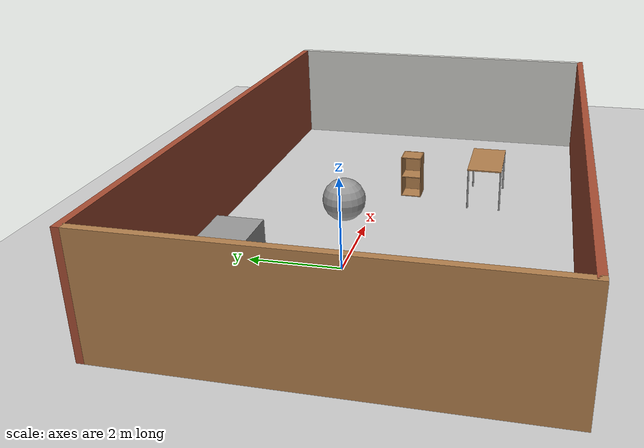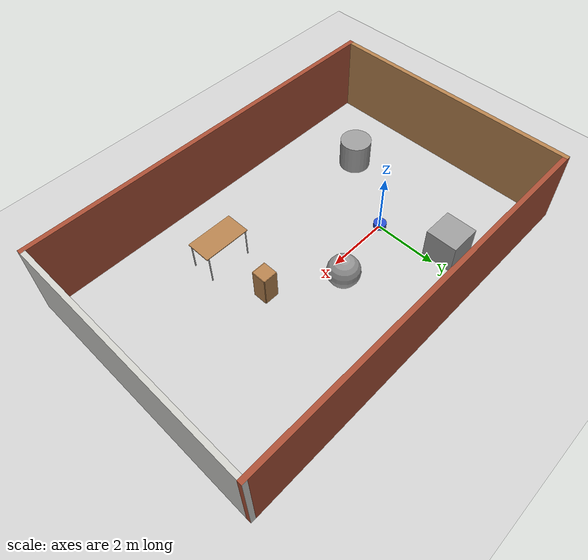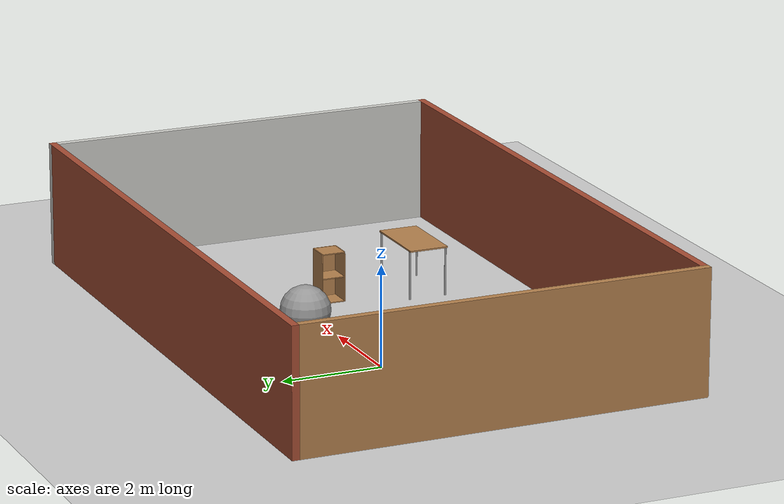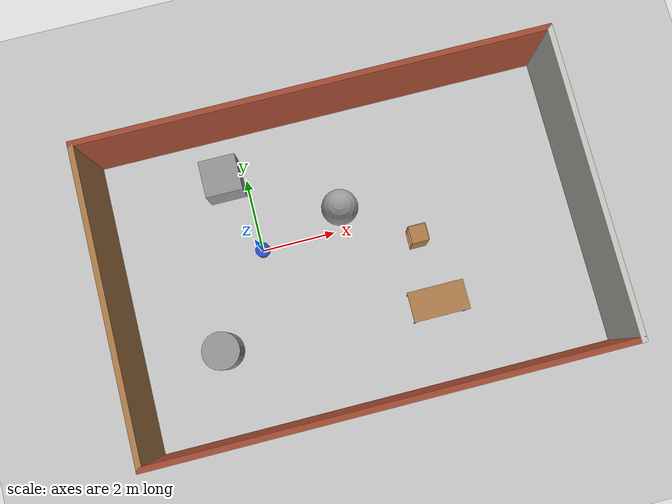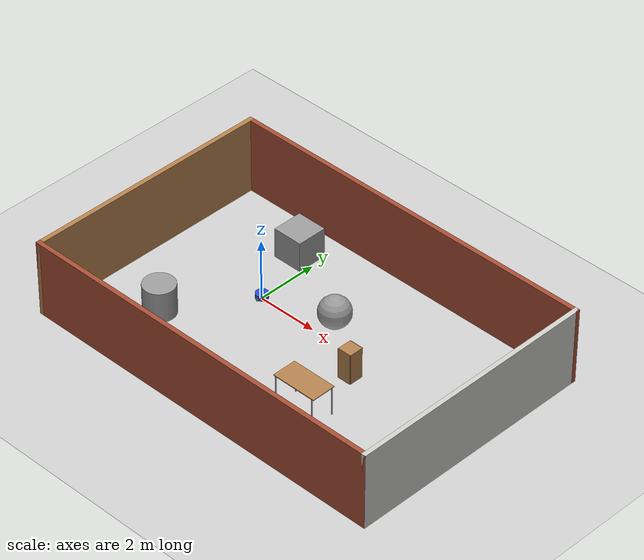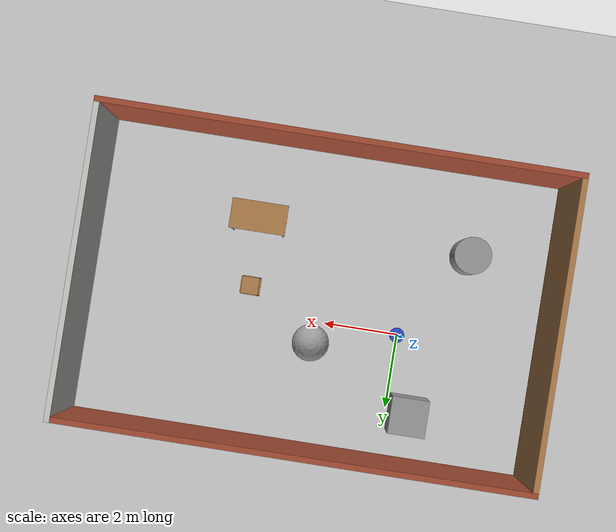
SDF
<sdf version="1.6">
 <world name="default">
  <light name="sun" type="directional">
   <pose>0 0 10 0 -0 0</pose>
   <diffuse>0.8 0.8 0.8 1</diffuse>
   <specular>0.2 0.2 0.2 1</specular>
   <attenuation>
    <range>1000</range>
    <constant>0.9</constant>
    <linear>0.01</linear>
    <quadratic>0.001</quadratic>
   </attenuation>
   <direction>-0.5 0.1 -0.9</direction>
  </light>
  <model name="ground_plane">
   <static>1</static>
   <link name="link">
    <collision name="collision">
     <geometry><plane><normal>0 0 1</normal><size>100 100</size></plane></geometry>
     <surface><friction><ode><mu>100</mu><mu2>50</mu2></ode></friction></surface>
    </collision>
    <visual name="visual">
     <cast_shadows>0</cast_shadows>
     <geometry><plane><normal>0 0 1</normal><size>100 100</size></plane></geometry>
     <material>
      <script><uri>file://media/materials/scripts/gazebo.material</uri><name>Gazebo/Grey</name></script>
     </material>
    </visual>
   </link>
  </model>
  <gravity>0 0 -9.8</gravity>
  <magnetic_field>6e-06 2.3e-05 -4.2e-05</magnetic_field>
  <atmosphere type="adiabatic"/>
  <physics name="default_physics" default="0" type="ode">
   <max_step_size>0.001</max_step_size>
   <real_time_factor>1</real_time_factor>
   <real_time_update_rate>1000</real_time_update_rate>
  </physics>
  <scene><ambient>0.4 0.4 0.4 1</ambient><background>0.7 0.7 0.7 1</background><shadows>1</shadows></scene>
  <audio><device>default</device></audio>
  <spherical_coordinates>
   <surface_model>EARTH_WGS84</surface_model>
   <latitude_deg>0</latitude_deg>
   <longitude_deg>0</longitude_deg>
   <elevation>0</elevation>
   <heading_deg>0</heading_deg>
  </spherical_coordinates>
  <model name="mrobot">
   <link name="base_footprint">
    <inertial>
     <pose>0 0 0.11 0 -0 0</pose>
     <mass>1</mass>
     <inertia><ixx>0.0121333</ixx><ixy>0</ixy><ixz>0</ixz><iyy>0.0121333</iyy><iyz>0</iyz><izz>0.02</izz></inertia>
    </inertial>
    <collision name="base_footprint_fixed_joint_lump__base_link_collision">
     <pose>0 0 0.11 0 -0 0</pose>
     <geometry><cylinder><length>0.16</length><radius>0.2</radius></cylinder></geometry>
    </collision>
    <visual name="base_footprint_visual">
     <geometry><box><size>0.001 0.001 0.001</size></box></geometry>
     <material><script><uri>__default__</uri><name>__default__</name></script></material>
    </visual>
    <visual name="base_footprint_fixed_joint_lump__base_link_visual_1">
     <pose>0 0 0.11 0 -0 0</pose>
     <geometry><cylinder><length>0.16</length><radius>0.2</radius></cylinder></geometry>
     <material>
      <script><name>Gazebo/Blue</name><uri>file://media/materials/scripts/gazebo.material</uri></script>
     </material>
    </visual>
   </link>
   <link name="back_caster_link">
    <pose>0.18 0 0.015 0 -0 0</pose>
    <inertial>
     <mass>0.2</mass>
     <inertia><ixx>1.8e-05</ixx><ixy>0</ixy><ixz>0</ixz><iyy>1.8e-05</iyy><iyz>0</iyz><izz>1.8e-05</izz></inertia>
    </inertial>
    <collision name="back_caster_link_collision">
     <geometry><sphere><radius>0.015</radius></sphere></geometry>
    </collision>
    <visual name="back_caster_link_visual">
     <geometry><sphere><radius>0.015</radius></sphere></geometry>
     <material>
      <script><name>Gazebo/Black</name><uri>file://media/materials/scripts/gazebo.material</uri></script>
     </material>
    </visual>
   </link>
   <joint name="back_caster_joint" type="revolute">
    <child>back_caster_link</child>
    <parent>base_footprint</parent>
    <axis>
     <xyz>0 1 0</xyz>
     <limit><lower>-1e+16</lower><upper>1e+16</upper></limit>
     <dynamics><spring_reference>0</spring_reference><spring_stiffness>0</spring_stiffness></dynamics>
     <use_parent_model_frame>1</use_parent_model_frame>
    </axis>
   </joint>
   <link name="front_caster_link">
    <pose>-0.18 0 0.015 0 -0 0</pose>
    <inertial>
     <mass>0.2</mass>
     <inertia><ixx>1.8e-05</ixx><ixy>0</ixy><ixz>0</ixz><iyy>1.8e-05</iyy><iyz>0</iyz><izz>1.8e-05</izz></inertia>
    </inertial>
    <collision name="front_caster_link_collision">
     <geometry><sphere><radius>0.015</radius></sphere></geometry>
    </collision>
    <visual name="front_caster_link_visual">
     <geometry><sphere><radius>0.015</radius></sphere></geometry>
     <material>
      <script><name>Gazebo/Black</name><uri>file://media/materials/scripts/gazebo.material</uri></script>
     </material>
    </visual>
   </link>
   <joint name="front_caster_joint" type="revolute">
    <child>front_caster_link</child>
    <parent>base_footprint</parent>
    <axis>
     <xyz>0 1 0</xyz>
     <limit><lower>-1e+16</lower><upper>1e+16</upper></limit>
     <dynamics><spring_reference>0</spring_reference><spring_stiffness>0</spring_stiffness></dynamics>
     <use_parent_model_frame>1</use_parent_model_frame>
    </axis>
   </joint>
   <link name="left_wheel_link">
    <pose>0 0.19 0.06 0 -0 0</pose>
    <inertial>
     <mass>0.2</mass>
     <inertia>
      <ixx>0.000190417</ixx>
      <ixy>0</ixy>
      <ixz>0</ixz>
      <iyy>0.000190417</iyy>
      <iyz>0</iyz>
      <izz>0.00036</izz>
     </inertia>
    </inertial>
    <collision name="left_wheel_link_collision">
     <pose>0 0 0 1.5708 -0 0</pose>
     <geometry><cylinder><length>0.025</length><radius>0.06</radius></cylinder></geometry>
    </collision>
    <visual name="left_wheel_link_visual">
     <pose>0 0 0 1.5708 -0 0</pose>
     <geometry><cylinder><length>0.025</length><radius>0.06</radius></cylinder></geometry>
     <material>
      <script><name>Gazebo/Gray</name><uri>file://media/materials/scripts/gazebo.material</uri></script>
     </material>
    </visual>
   </link>
   <joint name="left_wheel_joint" type="revolute">
    <child>left_wheel_link</child>
    <parent>base_footprint</parent>
    <axis>
     <xyz>0 1 0</xyz>
     <limit><lower>-1e+16</lower><upper>1e+16</upper></limit>
     <dynamics><spring_reference>0</spring_reference><spring_stiffness>0</spring_stiffness></dynamics>
     <use_parent_model_frame>1</use_parent_model_frame>
    </axis>
   </joint>
   <link name="right_wheel_link">
    <pose>0 -0.19 0.06 0 -0 0</pose>
    <inertial>
     <mass>0.2</mass>
     <inertia>
      <ixx>0.000190417</ixx>
      <ixy>0</ixy>
      <ixz>0</ixz>
      <iyy>0.000190417</iyy>
      <iyz>0</iyz>
      <izz>0.00036</izz>
     </inertia>
    </inertial>
    <collision name="right_wheel_link_collision">
     <pose>0 0 0 1.5708 -0 0</pose>
     <geometry><cylinder><length>0.025</length><radius>0.06</radius></cylinder></geometry>
    </collision>
    <visual name="right_wheel_link_visual">
     <pose>0 0 0 1.5708 -0 0</pose>
     <geometry><cylinder><length>0.025</length><radius>0.06</radius></cylinder></geometry>
     <material>
      <script><name>Gazebo/Gray</name><uri>file://media/materials/scripts/gazebo.material</uri></script>
     </material>
    </visual>
   </link>
   <joint name="right_wheel_joint" type="revolute">
    <child>right_wheel_link</child>
    <parent>base_footprint</parent>
    <axis>
     <xyz>0 1 0</xyz>
     <limit><lower>-1e+16</lower><upper>1e+16</upper></limit>
     <dynamics><spring_reference>0</spring_reference><spring_stiffness>0</spring_stiffness></dynamics>
     <use_parent_model_frame>1</use_parent_model_frame>
    </axis>
   </joint>
   <static>0</static>
   <plugin name="differential_drive_controller" filename="libgazebo_ros_diff_drive.so">
    <rosDebugLevel>Debug</rosDebugLevel>
    <publishWheelTF>1</publishWheelTF>
    <robotNamespace>/</robotNamespace>
    <publishTf>1</publishTf>
    <publishWheelJointState>1</publishWheelJointState>
    <alwaysOn>1</alwaysOn>
    <updateRate>100.0</updateRate>
    <legacyMode>1</legacyMode>
    <leftJoint>left_wheel_joint</leftJoint>
    <rightJoint>right_wheel_joint</rightJoint>
    <wheelSeparation>0.38</wheelSeparation>
    <wheelDiameter>0.12</wheelDiameter>
    <broadcastTF>1</broadcastTF>
    <wheelTorque>30</wheelTorque>
    <wheelAcceleration>1.8</wheelAcceleration>
    <commandTopic>cmd_vel</commandTopic>
    <odometryFrame>odom</odometryFrame>
    <odometryTopic>odom</odometryTopic>
    <robotBaseFrame>base_footprint</robotBaseFrame>
   </plugin>
   <pose>-0.002955 0.005128 -7e-06 3.5e-05 0 -0.013285</pose>
  </model>
  <model name="indoor_environment2">
   <pose>2.3301 -0.67241 0 0 -0 0</pose>
   <link name="Wall_2">
    <collision name="Wall_2_Collision">
     <geometry><box><size>12.5 0.15 2.5</size></box></geometry>
     <pose>0 0 1.25 0 -0 0</pose>
    </collision>
    <visual name="Wall_2_Visual">
     <pose>0 0 1.25 0 -0 0</pose>
     <geometry><box><size>12.5 0.15 2.5</size></box></geometry>
     <material>
      <script><uri>file://media/materials/scripts/gazebo.material</uri><name>Gazebo/Bricks</name></script>
      <ambient>1 1 1 1</ambient>
     </material>
     <meta><layer>0</layer></meta>
    </visual>
    <pose>-0 -4.05 0 0 -0 0</pose>
   </link>
   <link name="Wall_6">
    <collision name="Wall_6_Collision">
     <geometry><box><size>8.25 0.15 2.5</size></box></geometry>
     <pose>0 0 1.25 0 -0 0</pose>
    </collision>
    <visual name="Wall_6_Visual">
     <pose>0 0 1.25 0 -0 0</pose>
     <geometry><box><size>8.25 0.15 2.5</size></box></geometry>
     <material>
      <script><uri>file://media/materials/scripts/gazebo.material</uri><name>Gazebo/CeilingTiled</name></script>
      <ambient>1 1 1 1</ambient>
     </material>
     <meta><layer>0</layer></meta>
    </visual>
    <pose>6.175 0 0 0 -0 1.5708</pose>
   </link>
   <link name="Wall_7">
    <collision name="Wall_7_Collision">
     <geometry><box><size>12.5 0.15 2.5</size></box></geometry>
     <pose>0 0 1.25 0 -0 0</pose>
    </collision>
    <visual name="Wall_7_Visual">
     <pose>0 0 1.25 0 -0 0</pose>
     <geometry><box><size>12.5 0.15 2.5</size></box></geometry>
     <material>
      <script><uri>file://media/materials/scripts/gazebo.material</uri><name>Gazebo/Bricks</name></script>
      <ambient>1 1 1 1</ambient>
     </material>
     <meta><layer>0</layer></meta>
    </visual>
    <pose>-0 4.05 0 0 -0 3.14159</pose>
   </link>
   <link name="Wall_8">
    <collision name="Wall_8_Collision">
     <geometry><box><size>8.25 0.15 2.5</size></box></geometry>
     <pose>0 0 1.25 0 -0 0</pose>
    </collision>
    <visual name="Wall_8_Visual">
     <pose>0 0 1.25 0 -0 0</pose>
     <geometry><box><size>8.25 0.15 2.5</size></box></geometry>
     <material>
      <script><uri>file://media/materials/scripts/gazebo.material</uri><name>Gazebo/Wood</name></script>
      <ambient>1 1 1 1</ambient>
     </material>
     <meta><layer>0</layer></meta>
    </visual>
    <pose>-6.175 0 0 0 -0 -1.5708</pose>
   </link>
   <static>1</static>
  </model>
  <model name="unit_cylinder">
   <pose>-1.59721 -2.41099 0.499992 -3e-06 4e-06 0</pose>
   <link name="link">
    <inertial>
     <mass>1</mass>
     <inertia><ixx>0.145833</ixx><ixy>0</ixy><ixz>0</ixz><iyy>0.145833</iyy><iyz>0</iyz><izz>0.125</izz></inertia>
    </inertial>
    <collision name="collision">
     <geometry><cylinder><radius>0.5</radius><length>1</length></cylinder></geometry>
    </collision>
    <visual name="visual">
     <geometry><cylinder><radius>0.5</radius><length>1</length></cylinder></geometry>
     <material>
      <script><name>Gazebo/Grey</name><uri>file://media/materials/scripts/gazebo.material</uri></script>
     </material>
    </visual>
   </link>
  </model>
  <model name="unit_box">
   <pose>-0.577992 2.08155 0.499995 0 1e-05 0</pose>
   <link name="link">
    <inertial>
     <mass>1</mass>
     <inertia>
      <ixx>0.166667</ixx>
      <ixy>0</ixy>
      <ixz>0</ixz>
      <iyy>0.166667</iyy>
      <iyz>0</iyz>
      <izz>0.166667</izz>
     </inertia>
    </inertial>
    <collision name="collision"><geometry><box><size>1 1 1</size></box></geometry></collision>
    <visual name="visual">
     <geometry><box><size>1 1 1</size></box></geometry>
     <material>
      <script><name>Gazebo/Grey</name><uri>file://media/materials/scripts/gazebo.material</uri></script>
     </material>
    </visual>
   </link>
  </model>
  <model name="unit_sphere">
   <pose>2.29895 0.560047 0.5 0 -0 0</pose>
   <link name="link">
    <inertial>
     <mass>1</mass>
     <inertia><ixx>0.1</ixx><ixy>0</ixy><ixz>0</ixz><iyy>0.1</iyy><iyz>0</iyz><izz>0.1</izz></inertia>
    </inertial>
    <collision name="collision"><geometry><sphere><radius>0.5</radius></sphere></geometry></collision>
    <visual name="visual">
     <geometry><sphere><radius>0.5</radius></sphere></geometry>
     <material>
      <script><name>Gazebo/Grey</name><uri>file://media/materials/scripts/gazebo.material</uri></script>
     </material>
    </visual>
   </link>
  </model>
  <model name="cabinet">
   <static>1</static>
   <link name="cabinet_bottom_plate">
    <inertial>
     <pose>0 0 -1 0 -0 0</pose>
     <inertia><ixx>2.05</ixx><ixy>0</ixy><ixz>0</ixz><iyy>2.05</iyy><iyz>0</iyz><izz>2.05</izz></inertia>
     <mass>25</mass>
    </inertial>
    <collision name="cabinet_bottom_plate_geom">
     <pose>0 0 0.01 0 -0 0</pose>
     <geometry><box><size>0.45 0.45 0.02</size></box></geometry>
    </collision>
    <visual name="cabinet_bottom_plate_geom_visual">
     <pose>0 0 0.01 0 -0 0</pose>
     <geometry><box><size>0.45 0.45 0.02</size></box></geometry>
     <material>
      <script><uri>file://media/materials/scripts/gazebo.material</uri><name>Gazebo/Wood</name></script>
     </material>
    </visual>
    <collision name="cabinet_bottom_plate_geom_cabinet_back_plate">
     <pose>0.235 0 0.51 0 -0 0</pose>
     <geometry><box><size>0.02 0.45 1.02</size></box></geometry>
    </collision>
    <visual name="cabinet_bottom_plate_geom_cabinet_back_plate_visual">
     <pose>0.235 0 0.51 0 -0 0</pose>
     <geometry><box><size>0.02 0.45 1.02</size></box></geometry>
     <material>
      <script><uri>file://media/materials/scripts/gazebo.material</uri><name>Gazebo/Wood</name></script>
     </material>
    </visual>
    <collision name="cabinet_bottom_plate_geom_cabinet_left_plate">
     <pose>0 0.235 0.51 0 -0 0</pose>
     <geometry><box><size>0.45 0.02 1.02</size></box></geometry>
    </collision>
    <visual name="cabinet_bottom_plate_geom_cabinet_left_plate_visual">
     <pose>0 0.235 0.51 0 -0 0</pose>
     <geometry><box><size>0.45 0.02 1.02</size></box></geometry>
     <material>
      <script><uri>file://media/materials/scripts/gazebo.material</uri><name>Gazebo/Wood</name></script>
     </material>
    </visual>
    <collision name="cabinet_bottom_plate_geom_cabinet_middle_plate">
     <pose>0 0 0.51 0 -0 0</pose>
     <geometry><box><size>0.45 0.45 0.02</size></box></geometry>
    </collision>
    <visual name="cabinet_bottom_plate_geom_cabinet_middle_plate_visual">
     <pose>0 0 0.51 0 -0 0</pose>
     <geometry><box><size>0.45 0.45 0.02</size></box></geometry>
     <material>
      <script><uri>file://media/materials/scripts/gazebo.material</uri><name>Gazebo/Wood</name></script>
     </material>
    </visual>
    <collision name="cabinet_bottom_plate_geom_cabinet_right_plate">
     <pose>0 -0.235 0.51 0 -0 0</pose>
     <geometry><box><size>0.45 0.02 1.02</size></box></geometry>
    </collision>
    <visual name="cabinet_bottom_plate_geom_cabinet_right_plate_visual">
     <pose>0 -0.235 0.51 0 -0 0</pose>
     <geometry><box><size>0.45 0.02 1.02</size></box></geometry>
     <material>
      <script><uri>file://media/materials/scripts/gazebo.material</uri><name>Gazebo/Wood</name></script>
     </material>
    </visual>
    <collision name="cabinet_bottom_plate_geom_cabinet_top_plate">
     <pose>0 0 1.01 0 -0 0</pose>
     <geometry><box><size>0.45 0.45 0.02</size></box></geometry>
    </collision>
    <visual name="cabinet_bottom_plate_geom_cabinet_top_plate_visual">
     <pose>0 0 1.01 0 -0 0</pose>
     <geometry><box><size>0.45 0.45 0.02</size></box></geometry>
     <material>
      <script><uri>file://media/materials/scripts/gazebo.material</uri><name>Gazebo/Wood</name></script>
     </material>
    </visual>
   </link>
   <pose>4.11242 -0.714468 0 0 -0 0</pose>
  </model>
  <model name="table">
   <static>1</static>
   <link name="link">
    <collision name="surface">
     <pose>0 0 1 0 -0 0</pose>
     <geometry><box><size>1.5 0.8 0.03</size></box></geometry>
     <surface><friction><ode><mu>0.6</mu><mu2>0.6</mu2></ode></friction></surface>
    </collision>
    <visual name="visual1">
     <pose>0 0 1 0 -0 0</pose>
     <geometry><box><size>1.5 0.8 0.03</size></box></geometry>
     <material>
      <script><uri>file://media/materials/scripts/gazebo.material</uri><name>Gazebo/Wood</name></script>
     </material>
    </visual>
    <collision name="front_left_leg">
     <pose>0.68 0.38 0.5 0 -0 0</pose>
     <geometry><cylinder><radius>0.02</radius><length>1</length></cylinder></geometry>
    </collision>
    <visual name="front_left_leg">
     <pose>0.68 0.38 0.5 0 -0 0</pose>
     <geometry><cylinder><radius>0.02</radius><length>1</length></cylinder></geometry>
     <material>
      <script><uri>file://media/materials/scripts/gazebo.material</uri><name>Gazebo/Grey</name></script>
     </material>
    </visual>
    <collision name="front_right_leg">
     <pose>0.68 -0.38 0.5 0 -0 0</pose>
     <geometry><cylinder><radius>0.02</radius><length>1</length></cylinder></geometry>
    </collision>
    <visual name="front_right_leg">
     <pose>0.68 -0.38 0.5 0 -0 0</pose>
     <geometry><cylinder><radius>0.02</radius><length>1</length></cylinder></geometry>
     <material>
      <script><uri>file://media/materials/scripts/gazebo.material</uri><name>Gazebo/Grey</name></script>
     </material>
    </visual>
    <collision name="back_right_leg">
     <pose>-0.68 -0.38 0.5 0 -0 0</pose>
     <geometry><cylinder><radius>0.02</radius><length>1</length></cylinder></geometry>
    </collision>
    <visual name="back_right_leg">
     <pose>-0.68 -0.38 0.5 0 -0 0</pose>
     <geometry><cylinder><radius>0.02</radius><length>1</length></cylinder></geometry>
     <material>
      <script><uri>file://media/materials/scripts/gazebo.material</uri><name>Gazebo/Grey</name></script>
     </material>
    </visual>
    <collision name="back_left_leg">
     <pose>-0.68 0.38 0.5 0 -0 0</pose>
     <geometry><cylinder><radius>0.02</radius><length>1</length></cylinder></geometry>
    </collision>
    <visual name="back_left_leg">
     <pose>-0.68 0.38 0.5 0 -0 0</pose>
     <geometry><cylinder><radius>0.02</radius><length>1</length></cylinder></geometry>
     <material>
      <script><uri>file://media/materials/scripts/gazebo.material</uri><name>Gazebo/Grey</name></script>
     </material>
    </visual>
   </link>
   <pose>4.1663 -2.54749 0 0 -0 0</pose>
  </model>
 </world>
</sdf>
